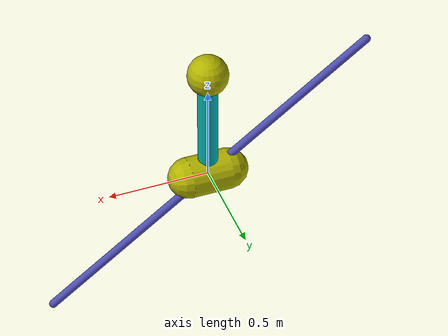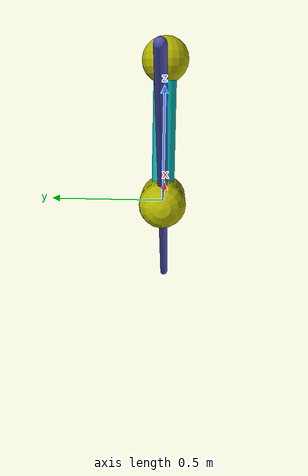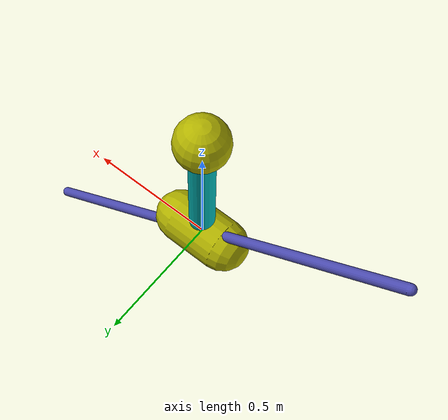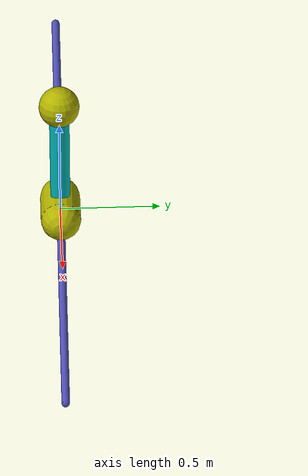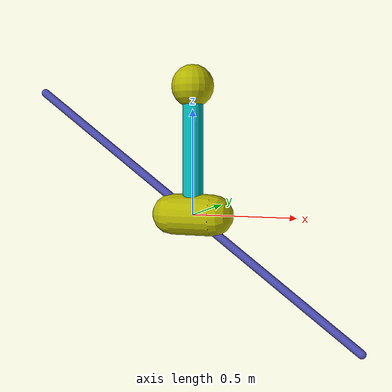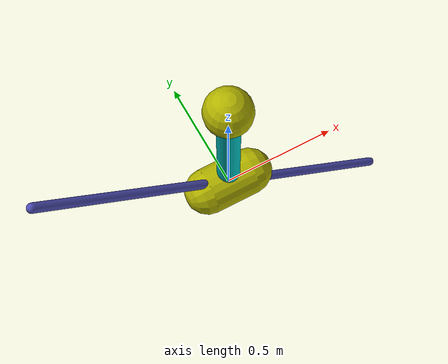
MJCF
<mujoco model="inverted_pendulum_base">
	<compiler inertiafromgeom="true"/>
	<default>
		<joint armature="0" damping="1" limited="true"/>
		<geom contype="0" friction="1 0.1 0.1" rgba="0.7 0.7 0 1"/>
		<tendon/>
		<motor ctrlrange="-3 3"/>
	</default>
	<option gravity="0 0 -9.81" integrator="RK4" timestep="0.02"/>
	<size nstack="3000"/>
	<worldbody>
		<!--geom name="ground" type="plane" pos="0 0 0" /-->
		<geom name="rail" pos="0 0 0" quat="0.47133333333 0 0.94266666666 0" rgba="0.3 0.3 0.7 1" size="0.02 1" type="capsule"/>
		<body name="cart" pos="0 0 0">
      <inertial pos="0 0 0" mass="1" diaginertia="1 1 1"/>
			<joint axis="-0.8 0 0.6" limited="true" name="slider" pos="0 0 0" range="-1 1" frictionloss="0" type="slide"/>
			<!--geom name="cart" pos="0 0 0" quat="0.707 0 0.707 0" size="0.1 0.1" type="capsule"/-->
			<geom name="cart" pos="0 0 0" quat="1 0 1 0" size="0.1 0.1" type="capsule"/>
			<body name="pole" pos="0 0 0">
				<inertial pos="0 0 0" mass="1" diaginertia="1 1 1"/>
				<joint axis="0 1 0" name="hinge" pos="0 0 0" range="-90 90" frictionloss="0" type="hinge"/>
				<geom fromto="0 0 0 0.001 0 0.6" name="cpole" rgba="0 0.7 0.7 1" size="0.049 0.3" type="capsule"/>
				<body name="ball" pos="0 0 0.61">
					<inertial pos="0 0 0" mass="1" diaginertia="166.667 166.667 166.667"/>
					<geom contype="0" name="ball" pos="0 0 0" size="0.1" type="sphere"/>
				</body>
			</body>
		</body>
	</worldbody>
	<actuator>
		<motor gear="100" joint="slider" name="slide"/>
	</actuator>
</mujoco>
